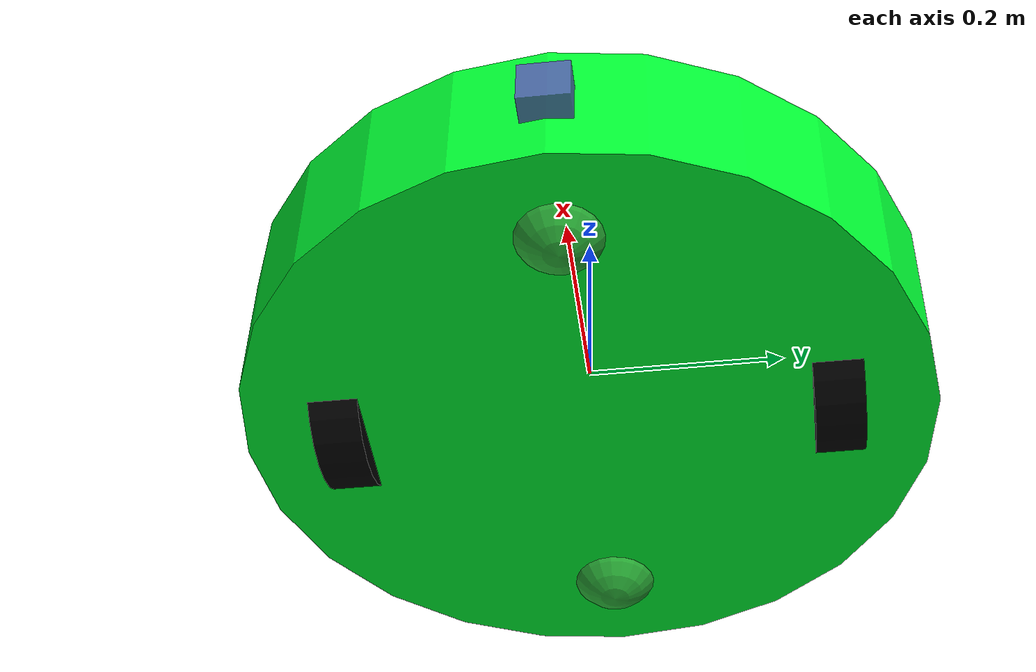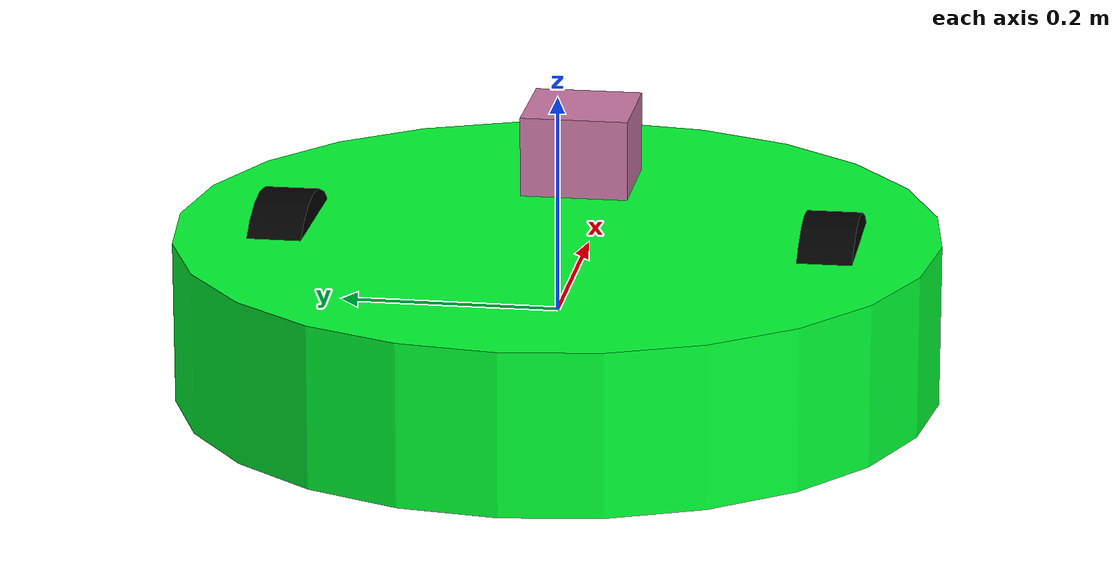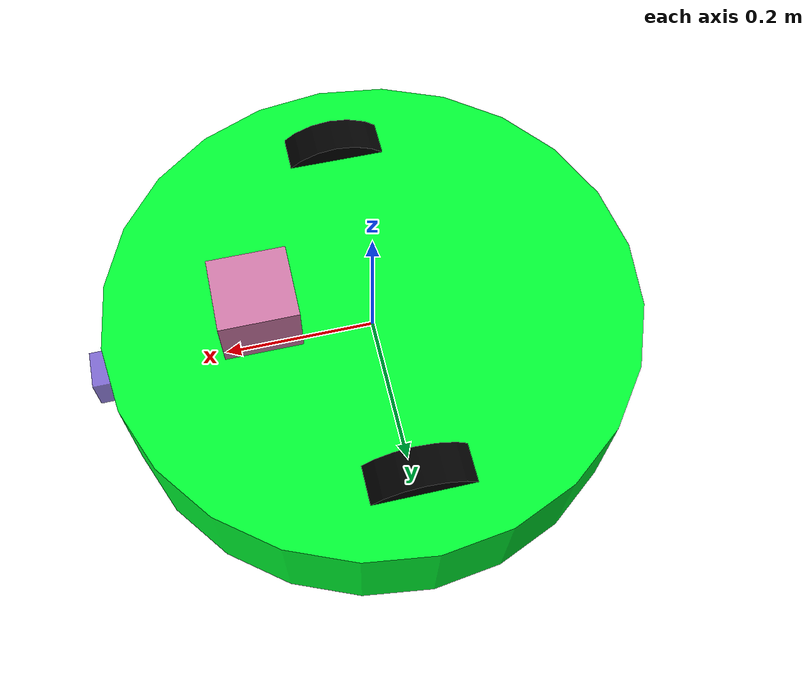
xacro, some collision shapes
<?xml version='1.0'?>

<robot name="my_robot" xmlns:xacro="http://www.ros.org/wiki/xacro">

  <xacro:include filename="$(find slam)/urdf/my_robot.gazebo"/>

  <gazebo reference="chassis">
    <material>Gazebo/Green</material>
  </gazebo>
  <gazebo reference="left_wheel">
    <material>Gazebo/FlatBlack</material>
  </gazebo>
  <gazebo reference="right_wheel">
    <material>Gazebo/FlatBlack</material>
  </gazebo>
  <gazebo reference="camera">
    <material>Gazebo/Indigo</material>
  </gazebo>

  <link name="robot_footprint"></link>

  <joint name="robot_footprint_joint" type="fixed">
  <origin xyz="0 0 0" rpy="0 0 0" />
  <parent link="robot_footprint"/>
  <child link="chassis" />
  </joint>

  <link name='chassis'>
      <pose>0 0 0.15 0 0 0</pose>

      <inertial>
        <mass value="15.0"/>
        <origin xyz="0.0 0 0" rpy=" 0 0 0"/>
        <inertia
                ixx="0.1" ixy="0" ixz="0"
                iyy="0.1" iyz="0"
                izz="0.1"
        />
      </inertial>

      <collision name='collision'>
        <origin xyz="0 0 0" rpy=" 0 0 0"/>
        <geometry>
              <cylinder radius="0.35" length="0.15"/>
        </geometry>
      </collision>

      <visual name='chassis_visual'>
        <origin xyz="0 0 0" rpy=" 0 0 0"/>
        <geometry>
              <cylinder radius="0.35" length="0.15"/>
        </geometry>
        <material name="green">
          <color rgba="0.0 1.0 0.2 1"/>
        </material>
      </visual>

      <collision name='back_caster_collision'>
        <origin xyz="-0.25 0 -0.05" rpy=" 0 0 0"/>
        <geometry>
              <sphere radius="0.0499"/>
        </geometry>
      </collision>

      <visual name='back_caster_visual'>
        <origin xyz="-0.25 0 -0.05" rpy=" 0 0 0"/>
        <geometry>
              <sphere radius="0.05"/>
        </geometry>
      </visual>

      <collision name='front_caster_collision'>
        <origin xyz="0.25 0 -0.05" rpy=" 0 0 0"/>
        <geometry>
              <sphere radius="0.0499"/>
        </geometry>
      </collision>

      <visual name='front_caster_visual'>
        <origin xyz="0.25 0 -0.05" rpy=" 0 0 0"/>
        <geometry>
              <sphere radius="0.05"/>
        </geometry>
      </visual>
  </link>

  <!-- Left wheel -->

  <link name="left_wheel">

    <inertial>
        <mass value="5.0"/>
        <origin xyz="0 0 0" rpy="0 1.5707 1.5707"/>
        <inertia
            ixx="0.1" ixy="0" ixz="0"
            iyy="0.1" iyz="0"
            izz="0.1"
        />
    </inertial>

    <visual name="left_wheel_visual">
      <origin xyz="0 0 0" rpy="0 1.5707 1.5707"/>
        <geometry>
          <cylinder radius="0.1" length="0.05"/>
        </geometry>
        <material name="black">
          <color rgba="0.0 0.0 0.0 1.0"/>
        </material>
    </visual>

    <collision name="left_wheel_collision">
      <origin xyz="0 0 0" rpy="0 1.5707 1.5707"/>
        <geometry>
          <cylinder radius="0.1" length="0.05"/>
        </geometry>
    </collision>

	</link>

  <joint type="continuous" name="left_wheel_hinge">
    <origin xyz="0 0.25 0" rpy="0 0 0"/>
    <child link="left_wheel"/>
    <parent link="chassis"/>
    <axis xyz="0 1 0" rpy="0 0 0"/>
    <limit effort="10000" velocity="1000"/>
    <dynamics damping="1.0" friction="1.0"/>
  </joint>

  <!-- Right wheel -->

  <link name="right_wheel">

    <inertial>
        <mass value="5.0"/>
        <origin xyz="0 0 0" rpy="0 1.5707 1.5707"/>
        <inertia
          ixx="0.1" ixy="0" ixz="0"
          iyy="0.1" iyz="0"
          izz="0.1"
        />
    </inertial>

    <visual name="right_wheel_visual">
        <origin xyz="0 0 0" rpy="0 1.5707 1.5707"/>
        <geometry>
            <cylinder radius="0.1" length="0.05"/>
        </geometry>
        <material name="black">
          <color rgba="0.0 0.0 0.0 1.0"/>
        </material>
    </visual>

    <collision name="right_wheel_collision">
        <origin xyz="0 0 0" rpy="0 1.5707 1.5707"/>
        <geometry>
            <cylinder radius="0.1" length="0.05"/>
        </geometry>
    </collision>

  </link>

  <joint type="continuous" name="right_wheel_hinge">
    <origin xyz="0 -0.25 0" rpy="0 0 0"/>
    <child link="right_wheel"/>
    <parent link="chassis"/>
    <axis xyz="0 1 0" rpy="0 0 0"/>
    <limit effort="10000" velocity="1000"/>
    <dynamics damping="1.0" friction="1.0"/>
  </joint>

  <!-- Camera -->

  <link name="camera">
    <inertial>
      <mass value="0.1"/>
      <origin xyz="0 0 0" rpy="0 0 0"/>
      <inertia
          ixx="1e-6" ixy="0" ixz="0"
          iyy="1e-6" iyz="0"
          izz="1e-6"
      />
    </inertial>

    <visual name="camera_visual">
      <origin xyz="0 0 0" rpy="0 0 0"/>
      <geometry>
        <box size="0.05 0.05 0.05"/>
      </geometry>
      <material name="purple">
        <color rgba="0.4 0.3 0.8 0.79"/>
      </material>
    </visual>

    <collision name="camera_collision">
      <origin xyz="0 0 0" rpy="0 0 0"/>
      <geometry>
        <box size="0.05 0.05 0.05"/>
      </geometry>
    </collision>

  </link>

  <joint type="fixed" name="camera_joint">
    <origin xyz="0.35 0 0" rpy="0 0 0"/>
    <child link="camera"/>
    <parent link="chassis"/>
    <axis xyz="0 1 0" rpy="0 0 0"/>
  </joint>

  <link name="camera_link_optical">
  </link>

  <joint name="camera_optical_joint" type="fixed">
    <origin xyz="0.0 0.0 0.0" rpy="-1.5708 0.0 -1.5708"/>
    <parent link="camera"/>
    <child link="camera_link_optical"/>
  </joint>

  <!-- Lidar -->

  <link name="hokuyo">

    <inertial>
      <mass value="1e-5"/>
      <origin xyz="0 0 0" rpy="0 0 0"/>
      <inertia
        ixx="1e-6" ixy="0" ixz="0"
        iyy="1e-6" iyz="0"
        izz="1e-6"
      />
    </inertial>

    <visual name="hokuyo_visual">
      <origin xyz="0 0 0" rpy="0 0 0"/>
      <geometry>
        <mesh filename="package://slam/meshes/hokuyo.dae"/>
      </geometry>
    </visual>

    <collision name="hokuyo_collision">
      <origin xyz="0 0 0" rpy="0 0 0"/>
      <geometry>
        <box size="0.1 0.1 0.1"/>
      </geometry>
    </collision>

  </link>

  <joint type="fixed" name="hokuyo_joint">
    <origin xyz="0.15 0 0.1" rpy="0 0 0"/>
    <child link="hokuyo"/>
    <parent link="chassis"/>
    <axis xyz="0 1 0" rpy="0 0 0"/>
  </joint>

</robot>
